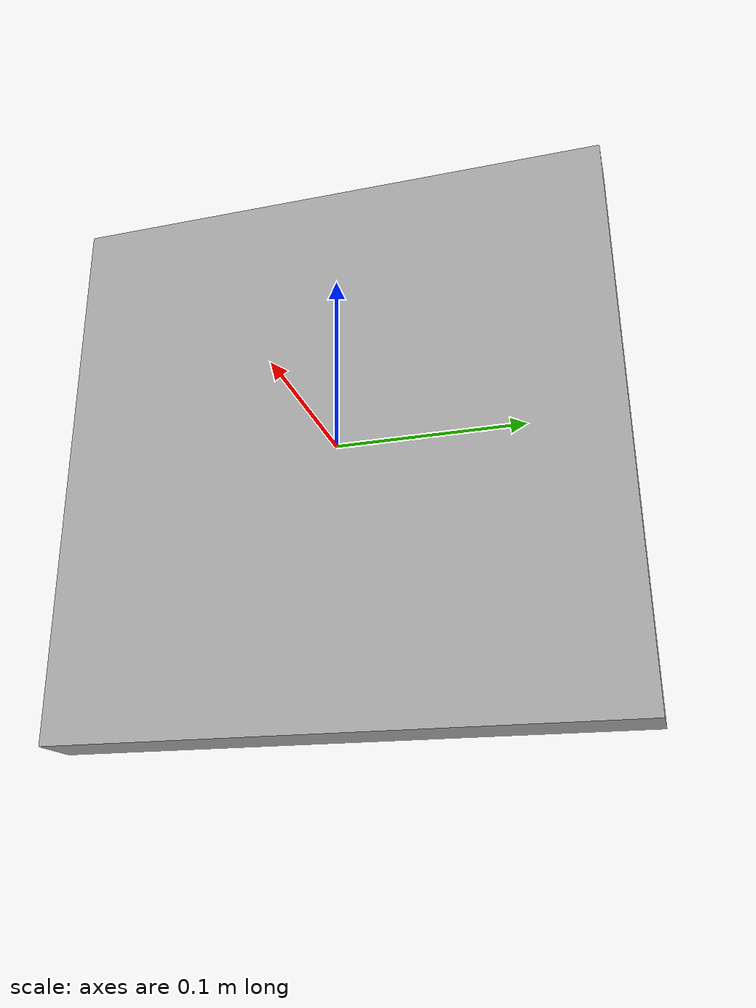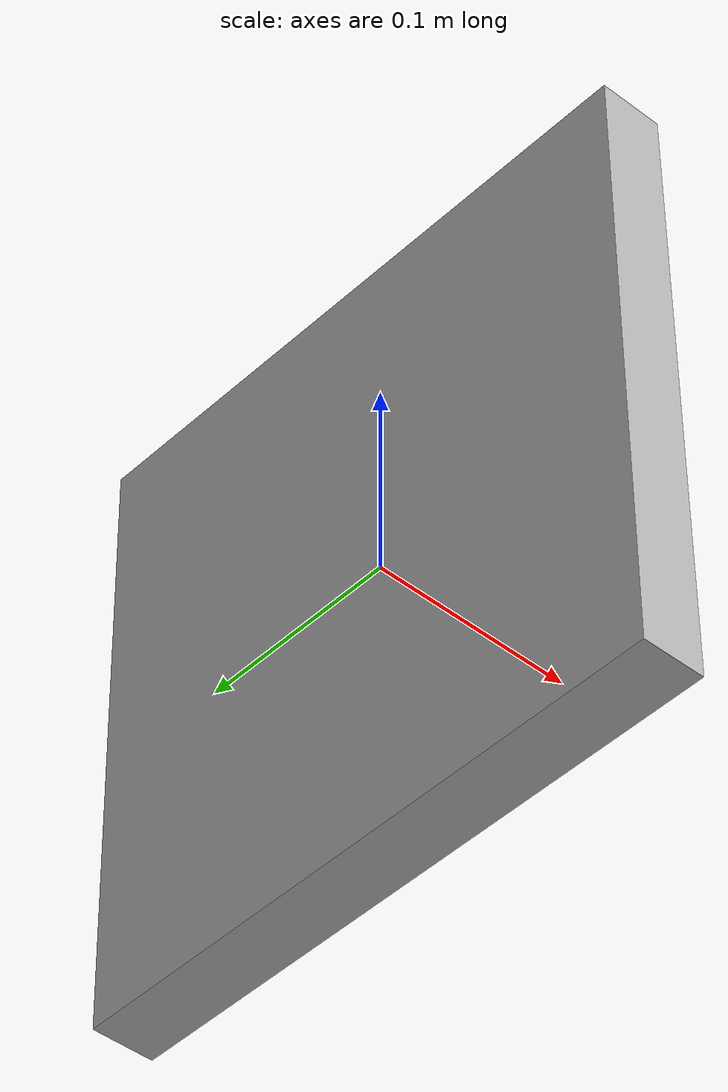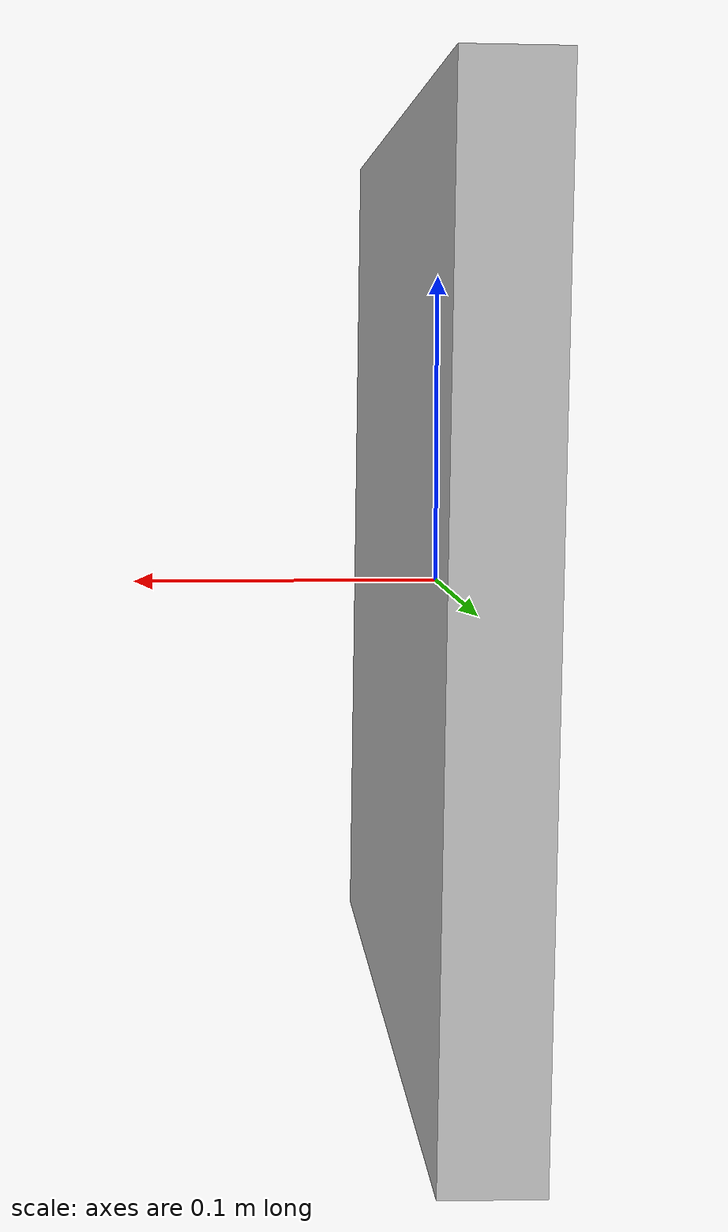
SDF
<?xml version="1.0"?>
<sdf version='1.6'>
  <model name='aruco2'>
    <pose>0 0 0 0 1.56 0</pose>
    <link name='link'>
      <visual name='visual'>
        <geometry>
          <box>
            <size>0.3 0.3 0.03</size>
          </box>
        </geometry>
        <material>
          <script>
            <uri>model://aruco2/materials/scripts</uri>
            <uri>model://aruco2/materials/textures</uri>
           <name>arucoTexture2</name>
          </script>
        </material>
      </visual>
      <collision name='collision'>
        <geometry>
          <box>
            <size>0.3 0.3 0.03</size>
          </box>
        </geometry>
      </collision>
    </link>
  </model>
</sdf>
